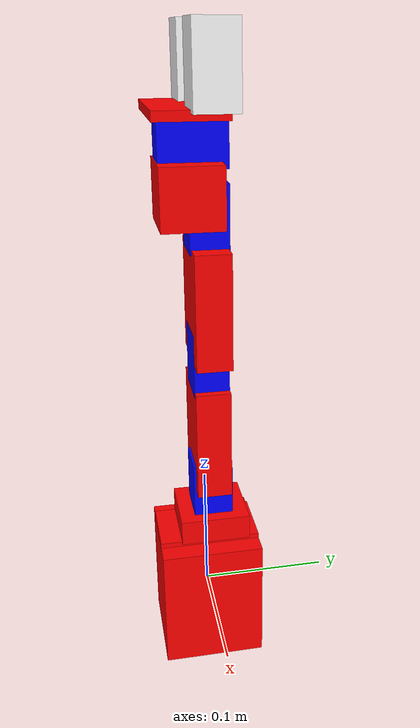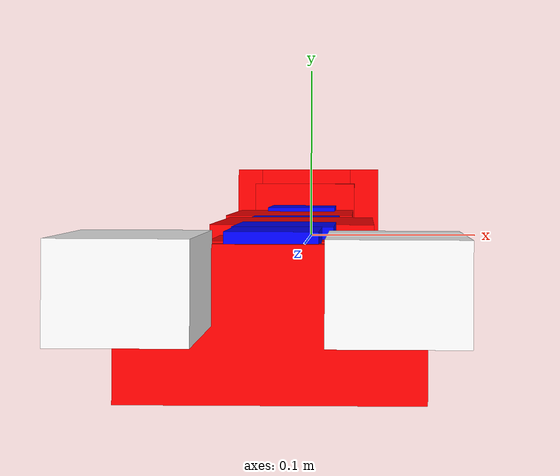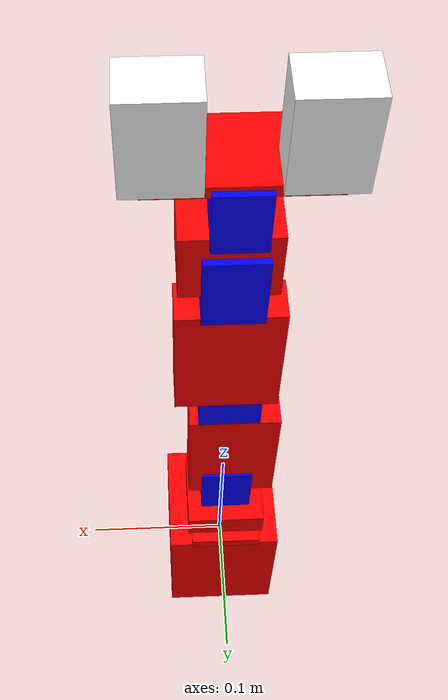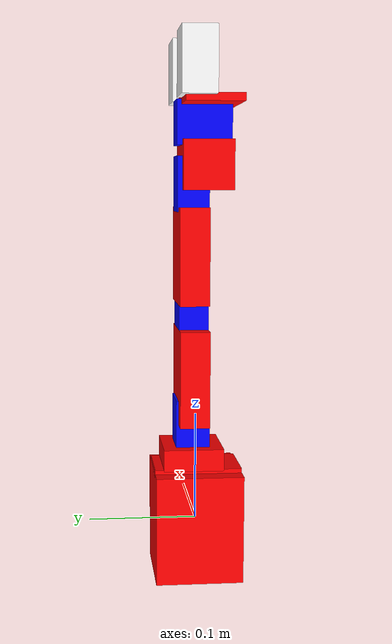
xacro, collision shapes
<?xml version="1.0"?>

<robot xmlns:xacro="http://www.ros.org/wiki/xacro" name="armando">
  <xacro:property name="yaml_file" value="$(find armando_description)/config/armando_controllers.yaml"/>

  <material name="red">
    <color rgba="1 0 0 1"/>
  </material>

  <material name="blue">
    <color rgba="0 0 1 1"/>
  </material>

  <material name="green">
    <color rgba="0 1 0 1"/>
  </material>

  <link name="base_link">
    <visual>
      <geometry>
        <mesh filename="package://armando_description/meshes/base_link.stl" scale="0.001 0.001 0.001"/>
      </geometry>
      <origin rpy="0 0 0" xyz="0 0 0"/>
      <material name="red"/>
    </visual>
    <collision>
      <geometry>
        <box size = "0.08 0.08 0.1"/>
      </geometry>
      <origin rpy="0 0 0" xyz="0 0 0"/>
    </collision>
    <inertial>
      <mass value="0.1"/>
      <inertia ixx="1.06682889e+08" ixy="0.0" ixz="0.0" iyy="9.92165844e+07" iyz="0.0" izz="1.26939175e+08"/>
    </inertial>
  </link>

  <joint name="base_1_2" type="fixed">
    <parent link="base_link"/>
    <child link="base_turn"/>
    <origin xyz="-0.0011 -0.011 0.05"/>
  </joint>

  <link name="base_turn">
    <visual>
      <geometry>
        <mesh filename="package://armando_description/meshes/base_turn.stl" scale="0.001 0.001 0.001"/>
      </geometry>
      <origin rpy="0 0 0" xyz="0 0 0"/>
      <material name="red"/>
    </visual>
    <collision>
      <geometry>
          <box size = "0.05 0.08 0.008"/>
        </geometry>
      <origin rpy="0 0 0" xyz="0 +0.011 0"/>
    </collision>
    <inertial>
      <mass value="0.1"/>
      <inertia ixx="1.35223008e+07" ixy="0.0" ixz="0.0" iyy="8.13814925e+06" iyz="0.0" izz="2.14903814e+07"/>
    </inertial>
  </link>

  <joint name="j0" type="revolute">
    <parent link="base_turn"/>
    <child link="base_turn_rot"/>
    <origin xyz="-0.0 0.0155 0.013" rpy = "0 0 -1.57"/>
    <axis xyz="0 0 1" />
    <limit effort="300" velocity="0.1" lower="-2.57" upper="2.57"/>
  </joint>

  <link name="base_turn_rot">
    <visual>
      <geometry>
        <mesh filename="package://armando_description/meshes/base_turn_table_rot.stl" scale="0.001 0.001 0.001"/>
      </geometry>
      <material name="red"/>
    </visual>
    <collision>
      <geometry>
          <box size = "0.055 0.055 0.02"/>
        </geometry>
      <origin rpy="0 0 0" xyz="0 0 0"/>
    </collision>

    <inertial>
      <mass value="0.1"/>
      <inertia ixx="0.001" ixy="0.0" ixz="0.0" iyy="0.001" iyz="0.0" izz="0.001"/>
    </inertial>
  </link>

  <joint name="base_turn_rot_dyn2" type="fixed">
    <parent link="base_turn_rot"/>
    <child link="dyn2"/>
    <origin xyz="0 0 0.0385" rpy="0 1.57 1.57 "/>
  </joint>

  <link name="dyn2">
    <visual>
      <geometry>
        <mesh filename="package://armando_description/meshes/dyn.stl" scale="0.01 0.01 0.01"/>
      </geometry>
      <material name="blue"/>
      <origin rpy="0 0 0" xyz="0 0 0"/>
    </visual>
    <collision>
      <geometry>
          <box size = "0.05 0.031 0.035"/>
        </geometry>
      <origin rpy="0 0 0" xyz="0.01 0 0"/>
    </collision>
     <inertial>
      <mass value="0.1"/>
      <inertia ixx="6.90013881e-05" ixy="0.0" ixz="0.0" iyy="1.24554875e-04" iyz="0.0" izz="1.04295793e-04"/>
    </inertial>
  </link>

  <joint name="j1" type="revolute">
    <parent link="dyn2"/>
    <child link="dyn2_r"/>
    <origin xyz="0 0 0.0" rpy="0 0 0"/>
    <axis xyz="0 0 1" />
    <limit effort="300" velocity="0.1" lower="-3.14" upper="3.14"/>
  </joint>

  <link name="dyn2_r">

  </link>

  <joint name="dyn2_f4" type="fixed">
    <parent link="dyn2_r"/>
    <child link="f4"/>
    <origin xyz="-0.047 0.0 -0.003" rpy="0 1.57 1.57"/>
  </joint>

  <link name="f4">
    <visual>
      <geometry>
        <mesh filename="package://armando_description/meshes/f4_n_f3.stl" scale="0.001 0.001 0.001"/>
      </geometry>
      <origin rpy="0 0 0" xyz="0 0 0"/>
      <material name="red"/>
    </visual>
    <collision>
      <geometry>
          <box size = "0.06 0.088 0.027"/>
        </geometry>
      <origin rpy="0 0 0" xyz="0 -0.01 0"/>
    </collision>
     <inertial>
      <mass value="0.1"/>
      <inertia ixx="6.90013881e-05" ixy="0.0" ixz="0.0" iyy="1.24554875e-04" iyz="0.0" izz="1.04295793e-04"/>
    </inertial>
  </link>

  <joint name="d4_dyn3" type="fixed">
    <parent link="f4"/>
    <child link="dyn3"/>
    <origin xyz="-0.004 0.0645 0 " rpy="-1.57 3.14 1.57"/>
  </joint>

  <link name="dyn3">
    <visual>
      <geometry>
        <mesh filename="package://armando_description/meshes/dyn.stl" scale="0.01 0.01 0.01"/>
      </geometry>
      <material name="blue"/>
      <origin rpy="0 0 0" xyz="0 0 0"/>
    </visual>
    <collision>
      <geometry>
          <box size = "0.05 0.027 0.04"/>
        </geometry>
      <origin rpy="0 0 0" xyz="0.01 0 0"/>
    </collision>
     <inertial>
      <mass value="0.1"/>
      <inertia ixx="6.90013881e-05" ixy="0.0" ixz="0.0" iyy="1.24554875e-04" iyz="0.0" izz="1.04295793e-04"/>
    </inertial>
  </link>

  <joint name="j2" type="revolute">
    <parent link="dyn3"/>
    <child link="dyn3_r"/>
    <origin xyz="0 0 0.0" rpy="0 0 0"/>
    <axis xyz="0 0 1" />
    <limit effort="300" velocity="0.1" lower="-3.14" upper="3.14"/>
  </joint>

 <link name="dyn3_r">

  </link>

  <joint name="dyn3_f5" type="fixed">
    <parent link="dyn3_r"/>
    <child link="f5"/>
    <origin xyz="-0.046 -0.0 -0.002" rpy="1.57 1.57 3.1415 "/>
  </joint>

  <link name="f5">
    <visual>
      <geometry>
        <mesh filename="package://armando_description/meshes/f4_n_f3.stl" scale="0.001 0.001 0.001"/>
      </geometry>
      <origin rpy="0 0 0" xyz="0 0 0"/>
      <material name="red"/>
    </visual>
    <collision>
      <geometry>
          <box size = "0.065 0.088 0.027"/>
        </geometry>
      <origin rpy="0 0 0" xyz="-0.005 -0.01 0"/>
    </collision>

    <inertial>
      <mass value="0.1"/>
  <inertia ixx="0.001" ixy="0.0" ixz="0.0" iyy="0.001" iyz="0.0" izz="0.001"/>    </inertial>
  </link>

  <joint name="f5_dyn4" type="fixed">
    <parent link="f5"/>
    <child link="dyn4"/>
    <origin xyz="-0.004 0.065 -0.0" rpy="-1.57 3.1415 1.57 "/>
  </joint>

  <link name="dyn4">
    <visual>
      <geometry>
        <mesh filename="package://armando_description/meshes/dyn.stl" scale="0.01 0.01 0.01"/>
      </geometry>
      <material name="blue"/>
      <origin rpy="0 0 0" xyz="0 0 0"/>
    </visual>
    <collision>
      <geometry>
          <box size = "0.05 0.029 0.037"/>
        </geometry>
      <origin rpy="0 0 0" xyz="0.01 0 0"/>
    </collision>

    <inertial>
      <mass value="0.1"/>
      <inertia ixx="6.90013881e-05" ixy="0.0" ixz="0.0" iyy="1.24554875e-04" iyz="0.0" izz="1.04295793e-04"/>
    </inertial>
  </link>

  <joint name="j3" type="revolute">
    <parent link="dyn4"/>
    <child link="dyn4_r"/>
    <origin xyz="0 0 0.0" rpy="0 0 0"/>
    <axis xyz="0 0 1" />
    <limit effort="300" velocity="0.1" lower="-3.14" upper="3.14"/>
  </joint>

  <link name="dyn4_r">

  </link>

  <joint name="f5_wrist" type="fixed">
    <parent link="dyn4_r"/>
    <child link="wrist"/>
    <origin xyz="-0.017 -0.013 0.003" rpy="1.57 1.57 -1.57"/>
  </joint>

  <link name="wrist">
    <visual>
      <geometry>
        <mesh filename="package://armando_description/meshes/wrist.stl" scale="0.001 0.001 0.001"/>
      </geometry>
      <origin rpy="0 0 0" xyz="0 0 0"/>
      <material name="red"/>
    </visual>
    <collision>
      <geometry>
        <box size = "0.057 0.046 0.045"/>
      </geometry>
      <origin rpy="0 0 0" xyz="0 0 -0.01"/>
    </collision>

     <inertial>
      <mass value="0.1"/>
      <inertia ixx="6.90013881e-05" ixy="0.0" ixz="0.0" iyy="1.24554875e-04" iyz="0.0" izz="1.04295793e-04"/>
    </inertial>
  </link>

  <joint name="wrist_dyn5" type="fixed">
    <parent link="wrist"/>
    <child link="dyn5"/>
    <origin xyz="0.0038 -0.013 0.0275" rpy="0 0 1.57"/>
  </joint>

    <link name="dyn5">
    <visual>
      <geometry>
        <mesh filename="package://armando_description/meshes/dyn.stl" scale="0.01 0.01 0.01"/>
      </geometry>
      <material name="blue"/>
      <origin rpy="0 0 0" xyz="0 0 0"/>
    </visual>
    <collision>
      <geometry>
          <box size = "0.05 0.031 0.04"/>
        </geometry>
      <origin rpy="0 0 0" xyz="0.01 0 0"/>
    </collision>

    <inertial>
      <mass value="0.1"/>
      <inertia ixx="6.90013881e-05" ixy="0.0" ixz="0.0" iyy="1.24554875e-04" iyz="0.0" izz="1.04295793e-04"/>
    </inertial>
  </link>

  <joint name="dyn5_dyn5_r" type="fixed">
    <parent link="dyn5"/>
    <child link="dyn5_r"/>
    <origin xyz="0 0 0.0" rpy="0 0 0"/>
    <axis xyz="0 0 1" />
    <limit effort="300" velocity="0.1" lower="-3.14" upper="3.14"/>
  </joint>

  <link name="dyn5_r">

  </link>

  <joint name="wrist_rotate_dyn5" type="fixed">
    <parent link="dyn5_r"/>
    <child link="crawer_base"/>
    <origin xyz="0.015 0 0.019" rpy="0 0 1.57"/>
  </joint>

  <link name="crawer_base">
    <visual>
      <geometry>
        <mesh filename="package://armando_description/meshes/the_crawer_base.stl" scale="0.001 0.001 0.001"/>
      </geometry>
      <origin rpy="0 0 0" xyz="0 0 0"/>
      <material name="red"/>
    </visual>
    <collision>
      <geometry>
          <box size = "0.102 0.052 0.007"/>
        </geometry>
      <origin rpy="0 0 0" xyz="0 0 0"/>
    </collision>

    <inertial>
      <mass value="0.1"/>
      <inertia ixx="6.90013881e-05" ixy="0.0" ixz="0.0" iyy="1.24554875e-04" iyz="0.0" izz="1.04295793e-04"/>
    </inertial>
  </link>

  <joint name="crawer_base_crawer_left" type="fixed">
    <parent link="crawer_base"/>
    <child link="crawer_left"/>
    <origin xyz="-0.03 0.015 0.01" rpy="0 -1.57 0"/>
  </joint>

  <link name="crawer_left">
    <visual>
      <geometry>
        <mesh filename="package://armando_description/meshes/the_crawer.stl" scale="0.001 0.001 0.001"/>
      </geometry>
      <origin rpy="0 0 0" xyz="0 0 0"/>
      <material name="white">
        <color rgba="1 1 1 1"/>
      </material>
    </visual>
    <collision>
      <geometry>
          <box size = "0.057 0.031 0.042"/>
        </geometry>
      <origin rpy="0 0 0" xyz="0.02 0 0.01"/>
    </collision>

    <inertial>
      <mass value="0.1"/>
      <inertia ixx="6.90013881e-05" ixy="0.0" ixz="0.0" iyy="1.24554875e-04" iyz="0.0" izz="1.04295793e-04"/>
    </inertial>
  </link>

  <joint name="crawer_base_crawer_right" type="fixed">
    <parent link="crawer_base"/>
    <child link="crawer_right"/>
    <origin xyz="0.03 0.015 0.01" rpy="3.1415 -1.57 0"/>
  </joint>

  <link name="crawer_right">
    <visual>
      <geometry>
        <mesh filename="package://armando_description/meshes/the_crawer.stl" scale="0.001 0.001 0.001"/>
      </geometry>
      <origin rpy="0 0 0" xyz="0 0 0"/>
      <material name="white">
        <color rgba="1 1 1 1"/>
      </material>
    </visual>
    <collision>
      <geometry>
          <box size = "0.057 0.031 0.042"/>
        </geometry>
      <origin rpy="0 0 0" xyz="0.02 0 0.01"/>
    </collision>

    <inertial>
      <mass value="0.1"/>
      <inertia ixx="6.90013881e-05" ixy="0.0" ixz="0.0" iyy="1.24554875e-04" iyz="0.0" izz="1.04295793e-04"/>
    </inertial>
  </link>

  <joint name="camera_joint" type="fixed">
      <parent link="base_link"/>
      <child link="camera_link"/>
      <origin xyz="0.0 0 -0.015" rpy="0.0 0 -1.57"/> <!-- la camera ora punta nella direzione in cui e' visibile il controllo: [0.0, 1.57, 0.0, 0.0] -->
  </joint>

  <link name="camera_link">
      <visual>
          <geometry>
              <box size="0.010 0.03 0.03"/>
          </geometry>
          <origin xyz="0 0 0" rpy="0 0 0"/>
          <material name="green"/>
      </visual>
  </link>

  <xacro:include filename="$(find armando_description)/urdf/armando_hardware_interface.xacro"/>
  <!-- Includi il file della camera -->
  <xacro:include filename="$(find armando_gazebo)/urdf/armando_camera.xacro"/>
  <!-- Istanzia il sensore camera -->
  <xacro:armando_camera_sensor/>

  <gazebo>
    <plugin filename="ign_ros2_control-system" name="ign_ros2_control::IgnitionROS2ControlPlugin">
    <parameters>$(find armando_description)/config/armando_controllers.yaml</parameters>
      <controller_manager_prefix_node_name>controller_manager</controller_manager_prefix_node_name>
    </plugin>
  </gazebo>

</robot>
